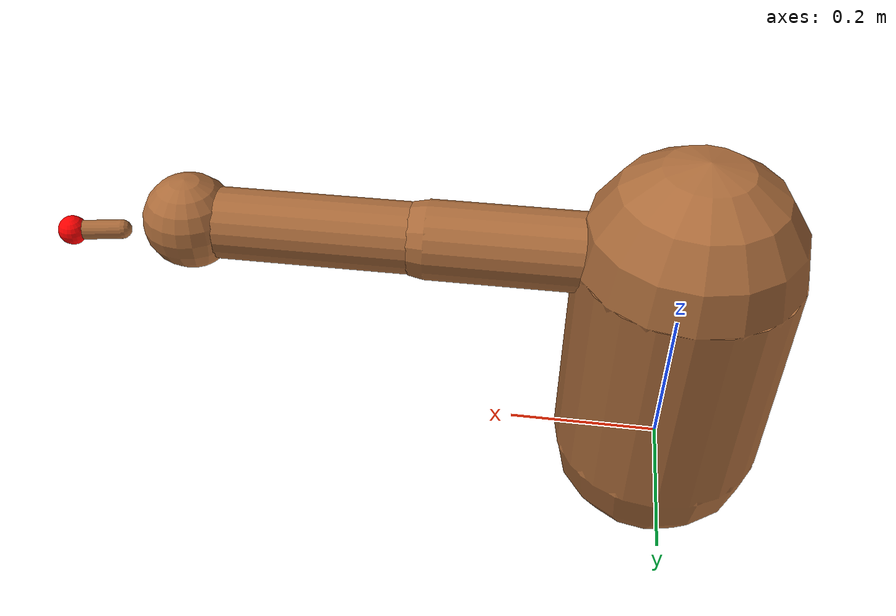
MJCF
<mujoco model="MoBL_ARMS_Upper_Limb_Model_OpenSim">
  <compiler angle="radian" inertiafromgeom="true"/>
  <option timestep="0.005" gravity="0 0 -9.81"/>

  <asset>
    <texture name="arm_texture" type="2d" builtin="flat" width="512" height="512" rgb1="0.82 0.65 0.48" rgb2="0.82 0.65 0.48"/>
    <material name="arm_mat" texture="arm_texture" shininess="0.1" specular="0.05" rgba="0.82 0.65 0.48 1"/>
  </asset>

  <worldbody>
    <light name="main_light" pos="0 -2 2" dir="0 1 -1" diffuse="1 1 1" specular="0.2 0.2 0.2"/>
    <light name="side_light" pos="2 0 2" dir="-1 0 -1" diffuse="0.8 0.8 0.8" specular="0.1 0.1 0.1"/>

    <!-- 躯干 -->
    <body name="torso" pos="0 0 0">
      <geom name="torso_geom" type="capsule" fromto="0 0 0 0 0 0.3" size="0.14" material="arm_mat"/>
      <!-- 肩关节（球铰，可全向旋转） -->
      <joint name="shoulder_joint" type="ball" pos="0 0 0.3"/>

      <!-- 大臂 -->
      <body name="humerus" pos="0 0 0.3">
        <geom name="humerus_geom" type="capsule" fromto="0 0 0 0.32 0 0" size="0.05" material="arm_mat"/>
        <!-- 肘关节（铰链，只能屈伸） -->
        <joint name="elbow_joint" type="hinge" pos="0.32 0 0" axis="0 1 0" range="-1.57 1.57"/>

        <!-- 小臂 -->
        <body name="radius" pos="0.32 0 0">
          <geom name="radius_geom" type="capsule" fromto="0 0 0 0.3 0 0" size="0.045" material="arm_mat"/>
          <!-- 腕关节（球铰，可旋转） -->
          <joint name="wrist_joint" type="ball" pos="0.3 0 0"/>

          <!-- 手掌+食指+核心测距点index_tip -->
          <body name="hand" pos="0.3 0 0">
            <geom name="hand_geom" type="sphere" size="0.06" material="arm_mat"/>
            <body name="index_finger" pos="0.08 0.03 0">
              <geom name="finger_geom" type="capsule" fromto="0 0 0 0.06 0.01 0" size="0.012" material="arm_mat"/>
              <!-- 毕设核心：食指尖测距点位 index_tip (红色标记点) -->
              <site name="index_tip" pos="0.06 0.01 0" size="0.018" rgba="1 0 0 1"/>
            </body>
          </body>
        </body>
      </body>
    </body>
  </worldbody>

  <!-- 关节驱动电机，保证手臂流畅运动 -->
  <actuator>
    <motor name="shoulder_motor" joint="shoulder_joint" ctrlrange="-1 1" gear="120"/>
    <motor name="elbow_motor" joint="elbow_joint" ctrlrange="-1 1" gear="100"/>
    <motor name="wrist_motor" joint="wrist_joint" ctrlrange="-1 1" gear="110"/>
  </actuator>
</mujoco>
